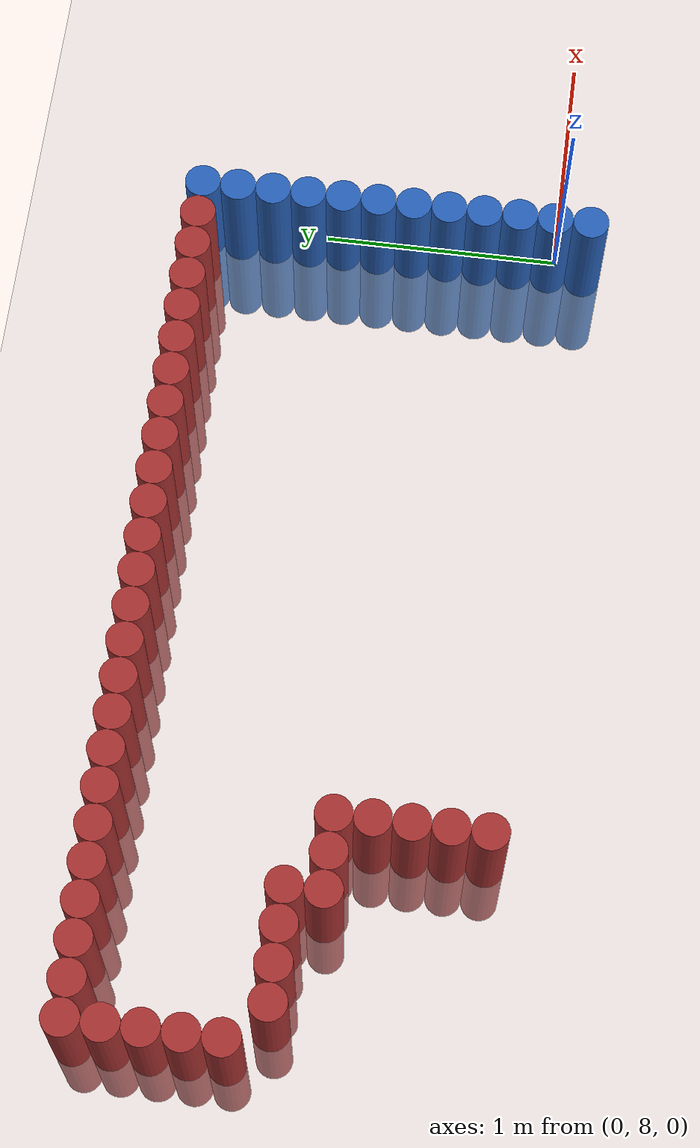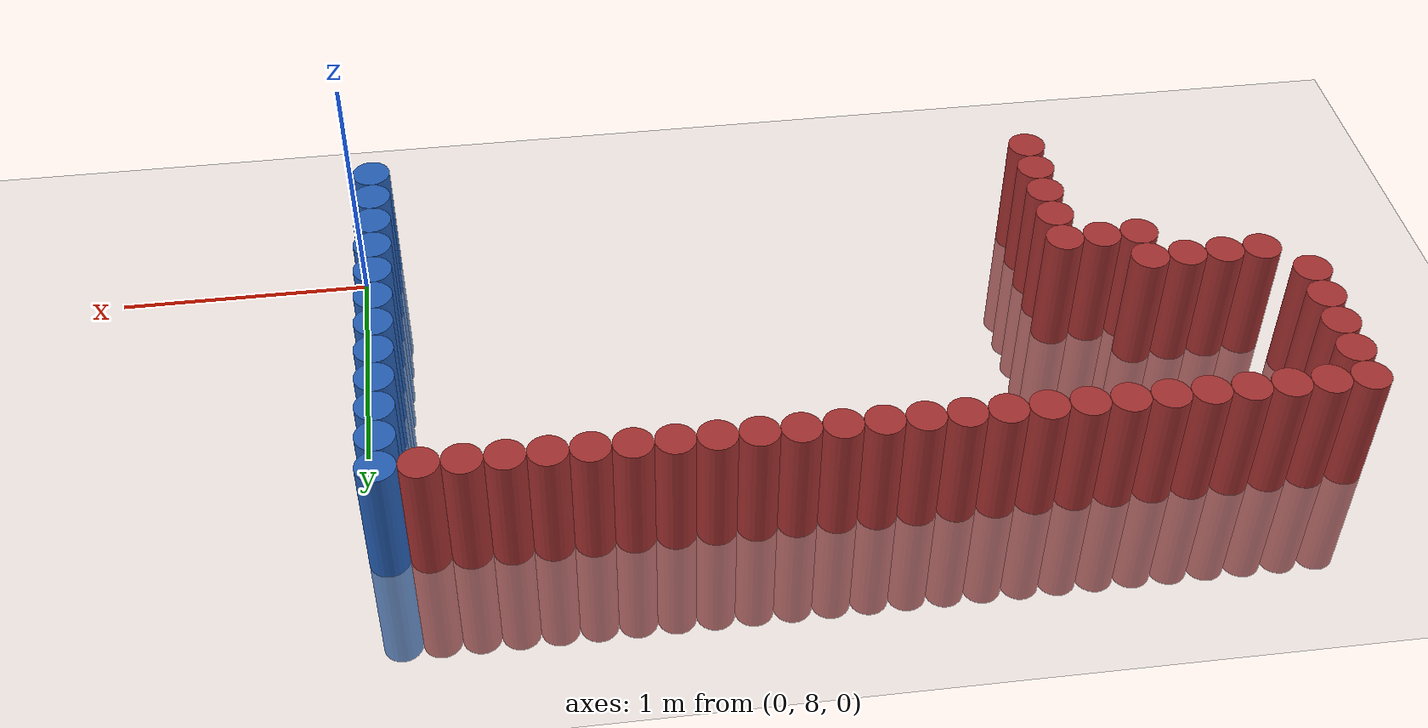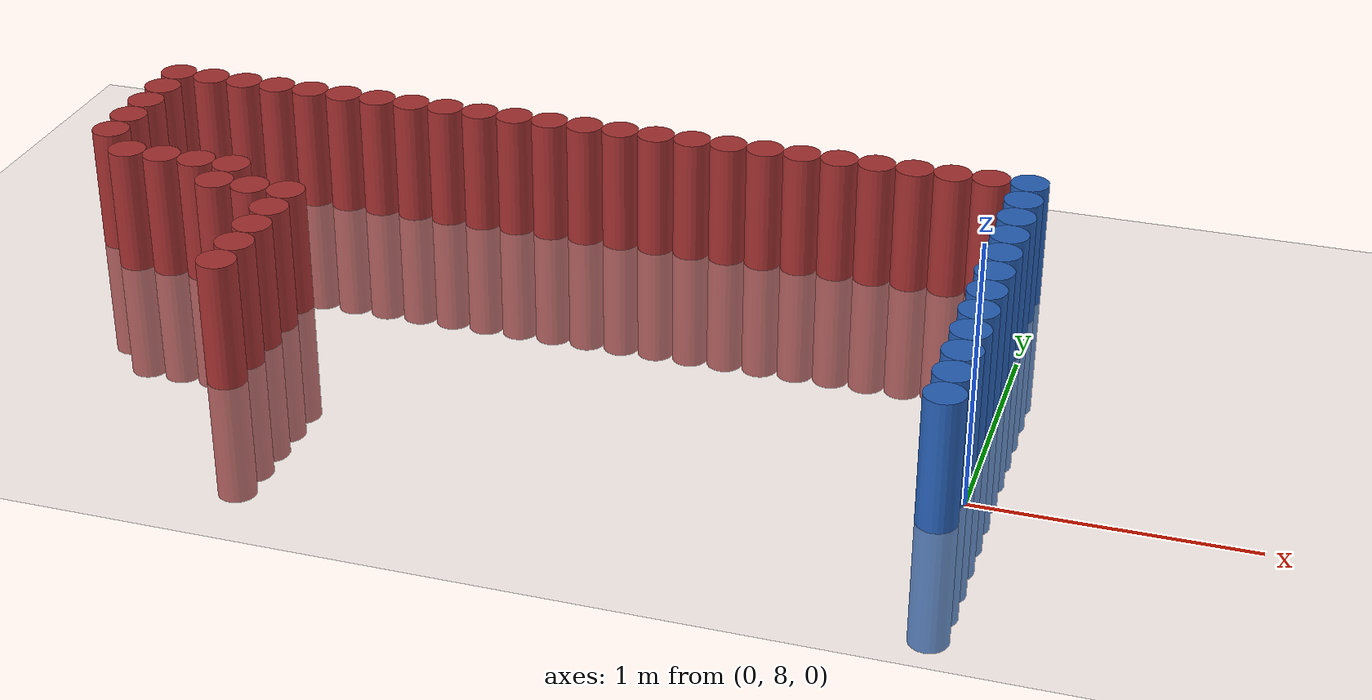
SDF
<sdf version="1.6">
 <world name="default">
  <model name="ground_plane">
   <static>1</static>
   <link name="link">
    <collision name="collision">
     <geometry><plane><normal>0 0 1</normal><size>100 100</size></plane></geometry>
     <surface><friction><ode><mu>100</mu><mu2>50</mu2></ode></friction></surface>
    </collision>
    <visual name="visual">
     <cast_shadows>0</cast_shadows>
     <geometry><plane><normal>0 0 1</normal><size>100 100</size></plane></geometry>
     <material>
      <script><uri>file://media/materials/scripts/gazebo.material</uri><name>Gazebo/Grey</name></script>
     </material>
    </visual>
   </link>
  </model>
  <model name="unit_cylinder_249">
   <static>1</static>
   <pose>-3.675000 8.925000 0.000000 0.000000 0.000000 0.000000</pose>
   <link name="link">
    <inertial>
     <mass>1</mass>
     <inertia><ixx>0.145833</ixx><ixy>0</ixy><ixz>0</ixz><iyy>0.145833</iyy><iyz>0</iyz><izz>0.125</izz></inertia>
    </inertial>
    <collision name="collision">
     <geometry><cylinder><radius>0.075000</radius><length>1</length></cylinder></geometry>
    </collision>
    <visual name="visual">
     <geometry><cylinder><radius>0.075000</radius><length>1</length></cylinder></geometry>
     <material>
      <ambient>0.648000 0.192000 0.192000 1</ambient>
      <diffuse>0.648000 0.192000 0.192000 1</diffuse>
     </material>
     <material>
      <script><name>Gazebo/Grey</name><uri>file://media/materials/scripts/gazebo.material</uri></script>
     </material>
    </visual>
   </link>
  </model>
  <model name="unit_cylinder_250">
   <static>1</static>
   <pose>-3.675000 9.075000 0.000000 0.000000 0.000000 0.000000</pose>
   <link name="link">
    <inertial>
     <mass>1</mass>
     <inertia><ixx>0.145833</ixx><ixy>0</ixy><ixz>0</ixz><iyy>0.145833</iyy><iyz>0</iyz><izz>0.125</izz></inertia>
    </inertial>
    <collision name="collision">
     <geometry><cylinder><radius>0.075000</radius><length>1</length></cylinder></geometry>
    </collision>
    <visual name="visual">
     <geometry><cylinder><radius>0.075000</radius><length>1</length></cylinder></geometry>
     <material>
      <ambient>0.648000 0.192000 0.192000 1</ambient>
      <diffuse>0.648000 0.192000 0.192000 1</diffuse>
     </material>
     <material>
      <script><name>Gazebo/Grey</name><uri>file://media/materials/scripts/gazebo.material</uri></script>
     </material>
    </visual>
   </link>
  </model>
  <model name="unit_cylinder_251">
   <static>1</static>
   <pose>-3.675000 9.225000 0.000000 0.000000 0.000000 0.000000</pose>
   <link name="link">
    <inertial>
     <mass>1</mass>
     <inertia><ixx>0.145833</ixx><ixy>0</ixy><ixz>0</ixz><iyy>0.145833</iyy><iyz>0</iyz><izz>0.125</izz></inertia>
    </inertial>
    <collision name="collision">
     <geometry><cylinder><radius>0.075000</radius><length>1</length></cylinder></geometry>
    </collision>
    <visual name="visual">
     <geometry><cylinder><radius>0.075000</radius><length>1</length></cylinder></geometry>
     <material>
      <ambient>0.648000 0.192000 0.192000 1</ambient>
      <diffuse>0.648000 0.192000 0.192000 1</diffuse>
     </material>
     <material>
      <script><name>Gazebo/Grey</name><uri>file://media/materials/scripts/gazebo.material</uri></script>
     </material>
    </visual>
   </link>
  </model>
  <model name="unit_cylinder_252">
   <static>1</static>
   <pose>-3.675000 9.375000 0.000000 0.000000 0.000000 0.000000</pose>
   <link name="link">
    <inertial>
     <mass>1</mass>
     <inertia><ixx>0.145833</ixx><ixy>0</ixy><ixz>0</ixz><iyy>0.145833</iyy><iyz>0</iyz><izz>0.125</izz></inertia>
    </inertial>
    <collision name="collision">
     <geometry><cylinder><radius>0.075000</radius><length>1</length></cylinder></geometry>
    </collision>
    <visual name="visual">
     <geometry><cylinder><radius>0.075000</radius><length>1</length></cylinder></geometry>
     <material>
      <ambient>0.648000 0.192000 0.192000 1</ambient>
      <diffuse>0.648000 0.192000 0.192000 1</diffuse>
     </material>
     <material>
      <script><name>Gazebo/Grey</name><uri>file://media/materials/scripts/gazebo.material</uri></script>
     </material>
    </visual>
   </link>
  </model>
  <model name="unit_cylinder_253">
   <static>1</static>
   <pose>-3.675000 9.525000 0.000000 0.000000 0.000000 0.000000</pose>
   <link name="link">
    <inertial>
     <mass>1</mass>
     <inertia><ixx>0.145833</ixx><ixy>0</ixy><ixz>0</ixz><iyy>0.145833</iyy><iyz>0</iyz><izz>0.125</izz></inertia>
    </inertial>
    <collision name="collision">
     <geometry><cylinder><radius>0.075000</radius><length>1</length></cylinder></geometry>
    </collision>
    <visual name="visual">
     <geometry><cylinder><radius>0.075000</radius><length>1</length></cylinder></geometry>
     <material>
      <ambient>0.648000 0.192000 0.192000 1</ambient>
      <diffuse>0.648000 0.192000 0.192000 1</diffuse>
     </material>
     <material>
      <script><name>Gazebo/Grey</name><uri>file://media/materials/scripts/gazebo.material</uri></script>
     </material>
    </visual>
   </link>
  </model>
  <model name="unit_cylinder_254">
   <static>1</static>
   <pose>-3.525000 8.775000 0.000000 0.000000 0.000000 0.000000</pose>
   <link name="link">
    <inertial>
     <mass>1</mass>
     <inertia><ixx>0.145833</ixx><ixy>0</ixy><ixz>0</ixz><iyy>0.145833</iyy><iyz>0</iyz><izz>0.125</izz></inertia>
    </inertial>
    <collision name="collision">
     <geometry><cylinder><radius>0.075000</radius><length>1</length></cylinder></geometry>
    </collision>
    <visual name="visual">
     <geometry><cylinder><radius>0.075000</radius><length>1</length></cylinder></geometry>
     <material>
      <ambient>0.648000 0.192000 0.192000 1</ambient>
      <diffuse>0.648000 0.192000 0.192000 1</diffuse>
     </material>
     <material>
      <script><name>Gazebo/Grey</name><uri>file://media/materials/scripts/gazebo.material</uri></script>
     </material>
    </visual>
   </link>
  </model>
  <model name="unit_cylinder_255">
   <static>1</static>
   <pose>-3.525000 9.525000 0.000000 0.000000 0.000000 0.000000</pose>
   <link name="link">
    <inertial>
     <mass>1</mass>
     <inertia><ixx>0.145833</ixx><ixy>0</ixy><ixz>0</ixz><iyy>0.145833</iyy><iyz>0</iyz><izz>0.125</izz></inertia>
    </inertial>
    <collision name="collision">
     <geometry><cylinder><radius>0.075000</radius><length>1</length></cylinder></geometry>
    </collision>
    <visual name="visual">
     <geometry><cylinder><radius>0.075000</radius><length>1</length></cylinder></geometry>
     <material>
      <ambient>0.648000 0.192000 0.192000 1</ambient>
      <diffuse>0.648000 0.192000 0.192000 1</diffuse>
     </material>
     <material>
      <script><name>Gazebo/Grey</name><uri>file://media/materials/scripts/gazebo.material</uri></script>
     </material>
    </visual>
   </link>
  </model>
  <model name="unit_cylinder_256">
   <static>1</static>
   <pose>-3.375000 8.775000 0.000000 0.000000 0.000000 0.000000</pose>
   <link name="link">
    <inertial>
     <mass>1</mass>
     <inertia><ixx>0.145833</ixx><ixy>0</ixy><ixz>0</ixz><iyy>0.145833</iyy><iyz>0</iyz><izz>0.125</izz></inertia>
    </inertial>
    <collision name="collision">
     <geometry><cylinder><radius>0.075000</radius><length>1</length></cylinder></geometry>
    </collision>
    <visual name="visual">
     <geometry><cylinder><radius>0.075000</radius><length>1</length></cylinder></geometry>
     <material>
      <ambient>0.648000 0.192000 0.192000 1</ambient>
      <diffuse>0.648000 0.192000 0.192000 1</diffuse>
     </material>
     <material>
      <script><name>Gazebo/Grey</name><uri>file://media/materials/scripts/gazebo.material</uri></script>
     </material>
    </visual>
   </link>
  </model>
  <model name="unit_cylinder_257">
   <static>1</static>
   <pose>-3.375000 9.525000 0.000000 0.000000 0.000000 0.000000</pose>
   <link name="link">
    <inertial>
     <mass>1</mass>
     <inertia><ixx>0.145833</ixx><ixy>0</ixy><ixz>0</ixz><iyy>0.145833</iyy><iyz>0</iyz><izz>0.125</izz></inertia>
    </inertial>
    <collision name="collision">
     <geometry><cylinder><radius>0.075000</radius><length>1</length></cylinder></geometry>
    </collision>
    <visual name="visual">
     <geometry><cylinder><radius>0.075000</radius><length>1</length></cylinder></geometry>
     <material>
      <ambient>0.648000 0.192000 0.192000 1</ambient>
      <diffuse>0.648000 0.192000 0.192000 1</diffuse>
     </material>
     <material>
      <script><name>Gazebo/Grey</name><uri>file://media/materials/scripts/gazebo.material</uri></script>
     </material>
    </visual>
   </link>
  </model>
  <model name="unit_cylinder_258">
   <static>1</static>
   <pose>-3.225000 8.775000 0.000000 0.000000 0.000000 0.000000</pose>
   <link name="link">
    <inertial>
     <mass>1</mass>
     <inertia><ixx>0.145833</ixx><ixy>0</ixy><ixz>0</ixz><iyy>0.145833</iyy><iyz>0</iyz><izz>0.125</izz></inertia>
    </inertial>
    <collision name="collision">
     <geometry><cylinder><radius>0.075000</radius><length>1</length></cylinder></geometry>
    </collision>
    <visual name="visual">
     <geometry><cylinder><radius>0.075000</radius><length>1</length></cylinder></geometry>
     <material>
      <ambient>0.648000 0.192000 0.192000 1</ambient>
      <diffuse>0.648000 0.192000 0.192000 1</diffuse>
     </material>
     <material>
      <script><name>Gazebo/Grey</name><uri>file://media/materials/scripts/gazebo.material</uri></script>
     </material>
    </visual>
   </link>
  </model>
  <model name="unit_cylinder_259">
   <static>1</static>
   <pose>-3.225000 9.525000 0.000000 0.000000 0.000000 0.000000</pose>
   <link name="link">
    <inertial>
     <mass>1</mass>
     <inertia><ixx>0.145833</ixx><ixy>0</ixy><ixz>0</ixz><iyy>0.145833</iyy><iyz>0</iyz><izz>0.125</izz></inertia>
    </inertial>
    <collision name="collision">
     <geometry><cylinder><radius>0.075000</radius><length>1</length></cylinder></geometry>
    </collision>
    <visual name="visual">
     <geometry><cylinder><radius>0.075000</radius><length>1</length></cylinder></geometry>
     <material>
      <ambient>0.648000 0.192000 0.192000 1</ambient>
      <diffuse>0.648000 0.192000 0.192000 1</diffuse>
     </material>
     <material>
      <script><name>Gazebo/Grey</name><uri>file://media/materials/scripts/gazebo.material</uri></script>
     </material>
    </visual>
   </link>
  </model>
  <model name="unit_cylinder_260">
   <static>1</static>
   <pose>-3.075000 8.625000 0.000000 0.000000 0.000000 0.000000</pose>
   <link name="link">
    <inertial>
     <mass>1</mass>
     <inertia><ixx>0.145833</ixx><ixy>0</ixy><ixz>0</ixz><iyy>0.145833</iyy><iyz>0</iyz><izz>0.125</izz></inertia>
    </inertial>
    <collision name="collision">
     <geometry><cylinder><radius>0.075000</radius><length>1</length></cylinder></geometry>
    </collision>
    <visual name="visual">
     <geometry><cylinder><radius>0.075000</radius><length>1</length></cylinder></geometry>
     <material>
      <ambient>0.648000 0.192000 0.192000 1</ambient>
      <diffuse>0.648000 0.192000 0.192000 1</diffuse>
     </material>
     <material>
      <script><name>Gazebo/Grey</name><uri>file://media/materials/scripts/gazebo.material</uri></script>
     </material>
    </visual>
   </link>
  </model>
  <model name="unit_cylinder_261">
   <static>1</static>
   <pose>-3.075000 8.775000 0.000000 0.000000 0.000000 0.000000</pose>
   <link name="link">
    <inertial>
     <mass>1</mass>
     <inertia><ixx>0.145833</ixx><ixy>0</ixy><ixz>0</ixz><iyy>0.145833</iyy><iyz>0</iyz><izz>0.125</izz></inertia>
    </inertial>
    <collision name="collision">
     <geometry><cylinder><radius>0.075000</radius><length>1</length></cylinder></geometry>
    </collision>
    <visual name="visual">
     <geometry><cylinder><radius>0.075000</radius><length>1</length></cylinder></geometry>
     <material>
      <ambient>0.648000 0.192000 0.192000 1</ambient>
      <diffuse>0.648000 0.192000 0.192000 1</diffuse>
     </material>
     <material>
      <script><name>Gazebo/Grey</name><uri>file://media/materials/scripts/gazebo.material</uri></script>
     </material>
    </visual>
   </link>
  </model>
  <model name="unit_cylinder_262">
   <static>1</static>
   <pose>-3.075000 9.525000 0.000000 0.000000 0.000000 0.000000</pose>
   <link name="link">
    <inertial>
     <mass>1</mass>
     <inertia><ixx>0.145833</ixx><ixy>0</ixy><ixz>0</ixz><iyy>0.145833</iyy><iyz>0</iyz><izz>0.125</izz></inertia>
    </inertial>
    <collision name="collision">
     <geometry><cylinder><radius>0.075000</radius><length>1</length></cylinder></geometry>
    </collision>
    <visual name="visual">
     <geometry><cylinder><radius>0.075000</radius><length>1</length></cylinder></geometry>
     <material>
      <ambient>0.648000 0.192000 0.192000 1</ambient>
      <diffuse>0.648000 0.192000 0.192000 1</diffuse>
     </material>
     <material>
      <script><name>Gazebo/Grey</name><uri>file://media/materials/scripts/gazebo.material</uri></script>
     </material>
    </visual>
   </link>
  </model>
  <model name="unit_cylinder_263">
   <static>1</static>
   <pose>-2.925000 8.625000 0.000000 0.000000 0.000000 0.000000</pose>
   <link name="link">
    <inertial>
     <mass>1</mass>
     <inertia><ixx>0.145833</ixx><ixy>0</ixy><ixz>0</ixz><iyy>0.145833</iyy><iyz>0</iyz><izz>0.125</izz></inertia>
    </inertial>
    <collision name="collision">
     <geometry><cylinder><radius>0.075000</radius><length>1</length></cylinder></geometry>
    </collision>
    <visual name="visual">
     <geometry><cylinder><radius>0.075000</radius><length>1</length></cylinder></geometry>
     <material>
      <ambient>0.648000 0.192000 0.192000 1</ambient>
      <diffuse>0.648000 0.192000 0.192000 1</diffuse>
     </material>
     <material>
      <script><name>Gazebo/Grey</name><uri>file://media/materials/scripts/gazebo.material</uri></script>
     </material>
    </visual>
   </link>
  </model>
  <model name="unit_cylinder_264">
   <static>1</static>
   <pose>-2.925000 9.525000 0.000000 0.000000 0.000000 0.000000</pose>
   <link name="link">
    <inertial>
     <mass>1</mass>
     <inertia><ixx>0.145833</ixx><ixy>0</ixy><ixz>0</ixz><iyy>0.145833</iyy><iyz>0</iyz><izz>0.125</izz></inertia>
    </inertial>
    <collision name="collision">
     <geometry><cylinder><radius>0.075000</radius><length>1</length></cylinder></geometry>
    </collision>
    <visual name="visual">
     <geometry><cylinder><radius>0.075000</radius><length>1</length></cylinder></geometry>
     <material>
      <ambient>0.648000 0.192000 0.192000 1</ambient>
      <diffuse>0.648000 0.192000 0.192000 1</diffuse>
     </material>
     <material>
      <script><name>Gazebo/Grey</name><uri>file://media/materials/scripts/gazebo.material</uri></script>
     </material>
    </visual>
   </link>
  </model>
  <model name="unit_cylinder_266">
   <static>1</static>
   <pose>-2.775000 8.025000 0.000000 0.000000 0.000000 0.000000</pose>
   <link name="link">
    <inertial>
     <mass>1</mass>
     <inertia><ixx>0.145833</ixx><ixy>0</ixy><ixz>0</ixz><iyy>0.145833</iyy><iyz>0</iyz><izz>0.125</izz></inertia>
    </inertial>
    <collision name="collision">
     <geometry><cylinder><radius>0.075000</radius><length>1</length></cylinder></geometry>
    </collision>
    <visual name="visual">
     <geometry><cylinder><radius>0.075000</radius><length>1</length></cylinder></geometry>
     <material>
      <ambient>0.648000 0.192000 0.192000 1</ambient>
      <diffuse>0.648000 0.192000 0.192000 1</diffuse>
     </material>
     <material>
      <script><name>Gazebo/Grey</name><uri>file://media/materials/scripts/gazebo.material</uri></script>
     </material>
    </visual>
   </link>
  </model>
  <model name="unit_cylinder_267">
   <static>1</static>
   <pose>-2.775000 8.175000 0.000000 0.000000 0.000000 0.000000</pose>
   <link name="link">
    <inertial>
     <mass>1</mass>
     <inertia><ixx>0.145833</ixx><ixy>0</ixy><ixz>0</ixz><iyy>0.145833</iyy><iyz>0</iyz><izz>0.125</izz></inertia>
    </inertial>
    <collision name="collision">
     <geometry><cylinder><radius>0.075000</radius><length>1</length></cylinder></geometry>
    </collision>
    <visual name="visual">
     <geometry><cylinder><radius>0.075000</radius><length>1</length></cylinder></geometry>
     <material>
      <ambient>0.648000 0.192000 0.192000 1</ambient>
      <diffuse>0.648000 0.192000 0.192000 1</diffuse>
     </material>
     <material>
      <script><name>Gazebo/Grey</name><uri>file://media/materials/scripts/gazebo.material</uri></script>
     </material>
    </visual>
   </link>
  </model>
  <model name="unit_cylinder_268">
   <static>1</static>
   <pose>-2.775000 8.325000 0.000000 0.000000 0.000000 0.000000</pose>
   <link name="link">
    <inertial>
     <mass>1</mass>
     <inertia><ixx>0.145833</ixx><ixy>0</ixy><ixz>0</ixz><iyy>0.145833</iyy><iyz>0</iyz><izz>0.125</izz></inertia>
    </inertial>
    <collision name="collision">
     <geometry><cylinder><radius>0.075000</radius><length>1</length></cylinder></geometry>
    </collision>
    <visual name="visual">
     <geometry><cylinder><radius>0.075000</radius><length>1</length></cylinder></geometry>
     <material>
      <ambient>0.648000 0.192000 0.192000 1</ambient>
      <diffuse>0.648000 0.192000 0.192000 1</diffuse>
     </material>
     <material>
      <script><name>Gazebo/Grey</name><uri>file://media/materials/scripts/gazebo.material</uri></script>
     </material>
    </visual>
   </link>
  </model>
  <model name="unit_cylinder_269">
   <static>1</static>
   <pose>-2.775000 8.475000 0.000000 0.000000 0.000000 0.000000</pose>
   <link name="link">
    <inertial>
     <mass>1</mass>
     <inertia><ixx>0.145833</ixx><ixy>0</ixy><ixz>0</ixz><iyy>0.145833</iyy><iyz>0</iyz><izz>0.125</izz></inertia>
    </inertial>
    <collision name="collision">
     <geometry><cylinder><radius>0.075000</radius><length>1</length></cylinder></geometry>
    </collision>
    <visual name="visual">
     <geometry><cylinder><radius>0.075000</radius><length>1</length></cylinder></geometry>
     <material>
      <ambient>0.648000 0.192000 0.192000 1</ambient>
      <diffuse>0.648000 0.192000 0.192000 1</diffuse>
     </material>
     <material>
      <script><name>Gazebo/Grey</name><uri>file://media/materials/scripts/gazebo.material</uri></script>
     </material>
    </visual>
   </link>
  </model>
  <model name="unit_cylinder_270">
   <static>1</static>
   <pose>-2.775000 8.625000 0.000000 0.000000 0.000000 0.000000</pose>
   <link name="link">
    <inertial>
     <mass>1</mass>
     <inertia><ixx>0.145833</ixx><ixy>0</ixy><ixz>0</ixz><iyy>0.145833</iyy><iyz>0</iyz><izz>0.125</izz></inertia>
    </inertial>
    <collision name="collision">
     <geometry><cylinder><radius>0.075000</radius><length>1</length></cylinder></geometry>
    </collision>
    <visual name="visual">
     <geometry><cylinder><radius>0.075000</radius><length>1</length></cylinder></geometry>
     <material>
      <ambient>0.648000 0.192000 0.192000 1</ambient>
      <diffuse>0.648000 0.192000 0.192000 1</diffuse>
     </material>
     <material>
      <script><name>Gazebo/Grey</name><uri>file://media/materials/scripts/gazebo.material</uri></script>
     </material>
    </visual>
   </link>
  </model>
  <model name="unit_cylinder_271">
   <static>1</static>
   <pose>-2.775000 9.525000 0.000000 0.000000 0.000000 0.000000</pose>
   <link name="link">
    <inertial>
     <mass>1</mass>
     <inertia><ixx>0.145833</ixx><ixy>0</ixy><ixz>0</ixz><iyy>0.145833</iyy><iyz>0</iyz><izz>0.125</izz></inertia>
    </inertial>
    <collision name="collision">
     <geometry><cylinder><radius>0.075000</radius><length>1</length></cylinder></geometry>
    </collision>
    <visual name="visual">
     <geometry><cylinder><radius>0.075000</radius><length>1</length></cylinder></geometry>
     <material>
      <ambient>0.648000 0.192000 0.192000 1</ambient>
      <diffuse>0.648000 0.192000 0.192000 1</diffuse>
     </material>
     <material>
      <script><name>Gazebo/Grey</name><uri>file://media/materials/scripts/gazebo.material</uri></script>
     </material>
    </visual>
   </link>
  </model>
  <model name="unit_cylinder_273">
   <static>1</static>
   <pose>-2.625000 9.525000 0.000000 0.000000 0.000000 0.000000</pose>
   <link name="link">
    <inertial>
     <mass>1</mass>
     <inertia><ixx>0.145833</ixx><ixy>0</ixy><ixz>0</ixz><iyy>0.145833</iyy><iyz>0</iyz><izz>0.125</izz></inertia>
    </inertial>
    <collision name="collision">
     <geometry><cylinder><radius>0.075000</radius><length>1</length></cylinder></geometry>
    </collision>
    <visual name="visual">
     <geometry><cylinder><radius>0.075000</radius><length>1</length></cylinder></geometry>
     <material>
      <ambient>0.648000 0.192000 0.192000 1</ambient>
      <diffuse>0.648000 0.192000 0.192000 1</diffuse>
     </material>
     <material>
      <script><name>Gazebo/Grey</name><uri>file://media/materials/scripts/gazebo.material</uri></script>
     </material>
    </visual>
   </link>
  </model>
  <model name="unit_cylinder_275">
   <static>1</static>
   <pose>-2.475000 9.525000 0.000000 0.000000 0.000000 0.000000</pose>
   <link name="link">
    <inertial>
     <mass>1</mass>
     <inertia><ixx>0.145833</ixx><ixy>0</ixy><ixz>0</ixz><iyy>0.145833</iyy><iyz>0</iyz><izz>0.125</izz></inertia>
    </inertial>
    <collision name="collision">
     <geometry><cylinder><radius>0.075000</radius><length>1</length></cylinder></geometry>
    </collision>
    <visual name="visual">
     <geometry><cylinder><radius>0.075000</radius><length>1</length></cylinder></geometry>
     <material>
      <ambient>0.648000 0.192000 0.192000 1</ambient>
      <diffuse>0.648000 0.192000 0.192000 1</diffuse>
     </material>
     <material>
      <script><name>Gazebo/Grey</name><uri>file://media/materials/scripts/gazebo.material</uri></script>
     </material>
    </visual>
   </link>
  </model>
  <model name="unit_cylinder_295">
   <static>1</static>
   <pose>-2.325000 9.525000 0.000000 0.000000 0.000000 0.000000</pose>
   <link name="link">
    <inertial>
     <mass>1</mass>
     <inertia><ixx>0.145833</ixx><ixy>0</ixy><ixz>0</ixz><iyy>0.145833</iyy><iyz>0</iyz><izz>0.125</izz></inertia>
    </inertial>
    <collision name="collision">
     <geometry><cylinder><radius>0.075000</radius><length>1</length></cylinder></geometry>
    </collision>
    <visual name="visual">
     <geometry><cylinder><radius>0.075000</radius><length>1</length></cylinder></geometry>
     <material>
      <ambient>0.648000 0.192000 0.192000 1</ambient>
      <diffuse>0.648000 0.192000 0.192000 1</diffuse>
     </material>
     <material>
      <script><name>Gazebo/Grey</name><uri>file://media/materials/scripts/gazebo.material</uri></script>
     </material>
    </visual>
   </link>
  </model>
  <model name="unit_cylinder_297">
   <static>1</static>
   <pose>-2.175000 9.525000 0.000000 0.000000 0.000000 0.000000</pose>
   <link name="link">
    <inertial>
     <mass>1</mass>
     <inertia><ixx>0.145833</ixx><ixy>0</ixy><ixz>0</ixz><iyy>0.145833</iyy><iyz>0</iyz><izz>0.125</izz></inertia>
    </inertial>
    <collision name="collision">
     <geometry><cylinder><radius>0.075000</radius><length>1</length></cylinder></geometry>
    </collision>
    <visual name="visual">
     <geometry><cylinder><radius>0.075000</radius><length>1</length></cylinder></geometry>
     <material>
      <ambient>0.648000 0.192000 0.192000 1</ambient>
      <diffuse>0.648000 0.192000 0.192000 1</diffuse>
     </material>
     <material>
      <script><name>Gazebo/Grey</name><uri>file://media/materials/scripts/gazebo.material</uri></script>
     </material>
    </visual>
   </link>
  </model>
  <model name="unit_cylinder_299">
   <static>1</static>
   <pose>-2.025000 9.525000 0.000000 0.000000 0.000000 0.000000</pose>
   <link name="link">
    <inertial>
     <mass>1</mass>
     <inertia><ixx>0.145833</ixx><ixy>0</ixy><ixz>0</ixz><iyy>0.145833</iyy><iyz>0</iyz><izz>0.125</izz></inertia>
    </inertial>
    <collision name="collision">
     <geometry><cylinder><radius>0.075000</radius><length>1</length></cylinder></geometry>
    </collision>
    <visual name="visual">
     <geometry><cylinder><radius>0.075000</radius><length>1</length></cylinder></geometry>
     <material>
      <ambient>0.648000 0.192000 0.192000 1</ambient>
      <diffuse>0.648000 0.192000 0.192000 1</diffuse>
     </material>
     <material>
      <script><name>Gazebo/Grey</name><uri>file://media/materials/scripts/gazebo.material</uri></script>
     </material>
    </visual>
   </link>
  </model>
  <model name="unit_cylinder_301">
   <static>1</static>
   <pose>-1.875000 9.525000 0.000000 0.000000 0.000000 0.000000</pose>
   <link name="link">
    <inertial>
     <mass>1</mass>
     <inertia><ixx>0.145833</ixx><ixy>0</ixy><ixz>0</ixz><iyy>0.145833</iyy><iyz>0</iyz><izz>0.125</izz></inertia>
    </inertial>
    <collision name="collision">
     <geometry><cylinder><radius>0.075000</radius><length>1</length></cylinder></geometry>
    </collision>
    <visual name="visual">
     <geometry><cylinder><radius>0.075000</radius><length>1</length></cylinder></geometry>
     <material>
      <ambient>0.648000 0.192000 0.192000 1</ambient>
      <diffuse>0.648000 0.192000 0.192000 1</diffuse>
     </material>
     <material>
      <script><name>Gazebo/Grey</name><uri>file://media/materials/scripts/gazebo.material</uri></script>
     </material>
    </visual>
   </link>
  </model>
  <model name="unit_cylinder_303">
   <static>1</static>
   <pose>-1.725000 9.525000 0.000000 0.000000 0.000000 0.000000</pose>
   <link name="link">
    <inertial>
     <mass>1</mass>
     <inertia><ixx>0.145833</ixx><ixy>0</ixy><ixz>0</ixz><iyy>0.145833</iyy><iyz>0</iyz><izz>0.125</izz></inertia>
    </inertial>
    <collision name="collision">
     <geometry><cylinder><radius>0.075000</radius><length>1</length></cylinder></geometry>
    </collision>
    <visual name="visual">
     <geometry><cylinder><radius>0.075000</radius><length>1</length></cylinder></geometry>
     <material>
      <ambient>0.648000 0.192000 0.192000 1</ambient>
      <diffuse>0.648000 0.192000 0.192000 1</diffuse>
     </material>
     <material>
      <script><name>Gazebo/Grey</name><uri>file://media/materials/scripts/gazebo.material</uri></script>
     </material>
    </visual>
   </link>
  </model>
  <model name="unit_cylinder_305">
   <static>1</static>
   <pose>-1.575000 9.525000 0.000000 0.000000 0.000000 0.000000</pose>
   <link name="link">
    <inertial>
     <mass>1</mass>
     <inertia><ixx>0.145833</ixx><ixy>0</ixy><ixz>0</ixz><iyy>0.145833</iyy><iyz>0</iyz><izz>0.125</izz></inertia>
    </inertial>
    <collision name="collision">
     <geometry><cylinder><radius>0.075000</radius><length>1</length></cylinder></geometry>
    </collision>
    <visual name="visual">
     <geometry><cylinder><radius>0.075000</radius><length>1</length></cylinder></geometry>
     <material>
      <ambient>0.648000 0.192000 0.192000 1</ambient>
      <diffuse>0.648000 0.192000 0.192000 1</diffuse>
     </material>
     <material>
      <script><name>Gazebo/Grey</name><uri>file://media/materials/scripts/gazebo.material</uri></script>
     </material>
    </visual>
   </link>
  </model>
  <model name="unit_cylinder_307">
   <static>1</static>
   <pose>-1.425000 9.525000 0.000000 0.000000 0.000000 0.000000</pose>
   <link name="link">
    <inertial>
     <mass>1</mass>
     <inertia><ixx>0.145833</ixx><ixy>0</ixy><ixz>0</ixz><iyy>0.145833</iyy><iyz>0</iyz><izz>0.125</izz></inertia>
    </inertial>
    <collision name="collision">
     <geometry><cylinder><radius>0.075000</radius><length>1</length></cylinder></geometry>
    </collision>
    <visual name="visual">
     <geometry><cylinder><radius>0.075000</radius><length>1</length></cylinder></geometry>
     <material>
      <ambient>0.648000 0.192000 0.192000 1</ambient>
      <diffuse>0.648000 0.192000 0.192000 1</diffuse>
     </material>
     <material>
      <script><name>Gazebo/Grey</name><uri>file://media/materials/scripts/gazebo.material</uri></script>
     </material>
    </visual>
   </link>
  </model>
  <model name="unit_cylinder_309">
   <static>1</static>
   <pose>-1.275000 9.525000 0.000000 0.000000 0.000000 0.000000</pose>
   <link name="link">
    <inertial>
     <mass>1</mass>
     <inertia><ixx>0.145833</ixx><ixy>0</ixy><ixz>0</ixz><iyy>0.145833</iyy><iyz>0</iyz><izz>0.125</izz></inertia>
    </inertial>
    <collision name="collision">
     <geometry><cylinder><radius>0.075000</radius><length>1</length></cylinder></geometry>
    </collision>
    <visual name="visual">
     <geometry><cylinder><radius>0.075000</radius><length>1</length></cylinder></geometry>
     <material>
      <ambient>0.648000 0.192000 0.192000 1</ambient>
      <diffuse>0.648000 0.192000 0.192000 1</diffuse>
     </material>
     <material>
      <script><name>Gazebo/Grey</name><uri>file://media/materials/scripts/gazebo.material</uri></script>
     </material>
    </visual>
   </link>
  </model>
  <model name="unit_cylinder_311">
   <static>1</static>
   <pose>-1.125000 9.525000 0.000000 0.000000 0.000000 0.000000</pose>
   <link name="link">
    <inertial>
     <mass>1</mass>
     <inertia><ixx>0.145833</ixx><ixy>0</ixy><ixz>0</ixz><iyy>0.145833</iyy><iyz>0</iyz><izz>0.125</izz></inertia>
    </inertial>
    <collision name="collision">
     <geometry><cylinder><radius>0.075000</radius><length>1</length></cylinder></geometry>
    </collision>
    <visual name="visual">
     <geometry><cylinder><radius>0.075000</radius><length>1</length></cylinder></geometry>
     <material>
      <ambient>0.648000 0.192000 0.192000 1</ambient>
      <diffuse>0.648000 0.192000 0.192000 1</diffuse>
     </material>
     <material>
      <script><name>Gazebo/Grey</name><uri>file://media/materials/scripts/gazebo.material</uri></script>
     </material>
    </visual>
   </link>
  </model>
  <model name="unit_cylinder_313">
   <static>1</static>
   <pose>-0.975000 9.525000 0.000000 0.000000 0.000000 0.000000</pose>
   <link name="link">
    <inertial>
     <mass>1</mass>
     <inertia><ixx>0.145833</ixx><ixy>0</ixy><ixz>0</ixz><iyy>0.145833</iyy><iyz>0</iyz><izz>0.125</izz></inertia>
    </inertial>
    <collision name="collision">
     <geometry><cylinder><radius>0.075000</radius><length>1</length></cylinder></geometry>
    </collision>
    <visual name="visual">
     <geometry><cylinder><radius>0.075000</radius><length>1</length></cylinder></geometry>
     <material>
      <ambient>0.648000 0.192000 0.192000 1</ambient>
      <diffuse>0.648000 0.192000 0.192000 1</diffuse>
     </material>
     <material>
      <script><name>Gazebo/Grey</name><uri>file://media/materials/scripts/gazebo.material</uri></script>
     </material>
    </visual>
   </link>
  </model>
  <model name="unit_cylinder_315">
   <static>1</static>
   <pose>-0.825000 9.525000 0.000000 0.000000 0.000000 0.000000</pose>
   <link name="link">
    <inertial>
     <mass>1</mass>
     <inertia><ixx>0.145833</ixx><ixy>0</ixy><ixz>0</ixz><iyy>0.145833</iyy><iyz>0</iyz><izz>0.125</izz></inertia>
    </inertial>
    <collision name="collision">
     <geometry><cylinder><radius>0.075000</radius><length>1</length></cylinder></geometry>
    </collision>
    <visual name="visual">
     <geometry><cylinder><radius>0.075000</radius><length>1</length></cylinder></geometry>
     <material>
      <ambient>0.648000 0.192000 0.192000 1</ambient>
      <diffuse>0.648000 0.192000 0.192000 1</diffuse>
     </material>
     <material>
      <script><name>Gazebo/Grey</name><uri>file://media/materials/scripts/gazebo.material</uri></script>
     </material>
    </visual>
   </link>
  </model>
  <model name="unit_cylinder_317">
   <static>1</static>
   <pose>-0.675000 9.525000 0.000000 0.000000 0.000000 0.000000</pose>
   <link name="link">
    <inertial>
     <mass>1</mass>
     <inertia><ixx>0.145833</ixx><ixy>0</ixy><ixz>0</ixz><iyy>0.145833</iyy><iyz>0</iyz><izz>0.125</izz></inertia>
    </inertial>
    <collision name="collision">
     <geometry><cylinder><radius>0.075000</radius><length>1</length></cylinder></geometry>
    </collision>
    <visual name="visual">
     <geometry><cylinder><radius>0.075000</radius><length>1</length></cylinder></geometry>
     <material>
      <ambient>0.648000 0.192000 0.192000 1</ambient>
      <diffuse>0.648000 0.192000 0.192000 1</diffuse>
     </material>
     <material>
      <script><name>Gazebo/Grey</name><uri>file://media/materials/scripts/gazebo.material</uri></script>
     </material>
    </visual>
   </link>
  </model>
  <model name="unit_cylinder_319">
   <static>1</static>
   <pose>-0.525000 9.525000 0.000000 0.000000 0.000000 0.000000</pose>
   <link name="link">
    <inertial>
     <mass>1</mass>
     <inertia><ixx>0.145833</ixx><ixy>0</ixy><ixz>0</ixz><iyy>0.145833</iyy><iyz>0</iyz><izz>0.125</izz></inertia>
    </inertial>
    <collision name="collision">
     <geometry><cylinder><radius>0.075000</radius><length>1</length></cylinder></geometry>
    </collision>
    <visual name="visual">
     <geometry><cylinder><radius>0.075000</radius><length>1</length></cylinder></geometry>
     <material>
      <ambient>0.648000 0.192000 0.192000 1</ambient>
      <diffuse>0.648000 0.192000 0.192000 1</diffuse>
     </material>
     <material>
      <script><name>Gazebo/Grey</name><uri>file://media/materials/scripts/gazebo.material</uri></script>
     </material>
    </visual>
   </link>
  </model>
  <model name="unit_cylinder_321">
   <static>1</static>
   <pose>-0.375000 9.525000 0.000000 0.000000 0.000000 0.000000</pose>
   <link name="link">
    <inertial>
     <mass>1</mass>
     <inertia><ixx>0.145833</ixx><ixy>0</ixy><ixz>0</ixz><iyy>0.145833</iyy><iyz>0</iyz><izz>0.125</izz></inertia>
    </inertial>
    <collision name="collision">
     <geometry><cylinder><radius>0.075000</radius><length>1</length></cylinder></geometry>
    </collision>
    <visual name="visual">
     <geometry><cylinder><radius>0.075000</radius><length>1</length></cylinder></geometry>
     <material>
      <ambient>0.648000 0.192000 0.192000 1</ambient>
      <diffuse>0.648000 0.192000 0.192000 1</diffuse>
     </material>
     <material>
      <script><name>Gazebo/Grey</name><uri>file://media/materials/scripts/gazebo.material</uri></script>
     </material>
    </visual>
   </link>
  </model>
  <model name="unit_cylinder_323">
   <static>1</static>
   <pose>-0.225000 9.525000 0.000000 0.000000 0.000000 0.000000</pose>
   <link name="link">
    <inertial>
     <mass>1</mass>
     <inertia><ixx>0.145833</ixx><ixy>0</ixy><ixz>0</ixz><iyy>0.145833</iyy><iyz>0</iyz><izz>0.125</izz></inertia>
    </inertial>
    <collision name="collision">
     <geometry><cylinder><radius>0.075000</radius><length>1</length></cylinder></geometry>
    </collision>
    <visual name="visual">
     <geometry><cylinder><radius>0.075000</radius><length>1</length></cylinder></geometry>
     <material>
      <ambient>0.648000 0.192000 0.192000 1</ambient>
      <diffuse>0.648000 0.192000 0.192000 1</diffuse>
     </material>
     <material>
      <script><name>Gazebo/Grey</name><uri>file://media/materials/scripts/gazebo.material</uri></script>
     </material>
    </visual>
   </link>
  </model>
  <model name="unit_cylinder_342">
   <static>1</static>
   <pose>-0.075000 7.875000 0.000000 0.000000 0.000000 0.000000</pose>
   <link name="link">
    <inertial>
     <mass>1</mass>
     <inertia><ixx>0.145833</ixx><ixy>0</ixy><ixz>0</ixz><iyy>0.145833</iyy><iyz>0</iyz><izz>0.125</izz></inertia>
    </inertial>
    <collision name="collision">
     <geometry><cylinder><radius>0.075000</radius><length>1</length></cylinder></geometry>
    </collision>
    <visual name="visual">
     <geometry><cylinder><radius>0.075000</radius><length>1</length></cylinder></geometry>
     <material>
      <ambient>0.152000 0.379000 0.720000 1</ambient>
      <diffuse>0.152000 0.379000 0.720000 1</diffuse>
     </material>
     <material>
      <script><name>Gazebo/Grey</name><uri>file://media/materials/scripts/gazebo.material</uri></script>
     </material>
    </visual>
   </link>
  </model>
  <model name="unit_cylinder_343">
   <static>1</static>
   <pose>-0.075000 8.025000 0.000000 0.000000 0.000000 0.000000</pose>
   <link name="link">
    <inertial>
     <mass>1</mass>
     <inertia><ixx>0.145833</ixx><ixy>0</ixy><ixz>0</ixz><iyy>0.145833</iyy><iyz>0</iyz><izz>0.125</izz></inertia>
    </inertial>
    <collision name="collision">
     <geometry><cylinder><radius>0.075000</radius><length>1</length></cylinder></geometry>
    </collision>
    <visual name="visual">
     <geometry><cylinder><radius>0.075000</radius><length>1</length></cylinder></geometry>
     <material>
      <ambient>0.152000 0.379000 0.720000 1</ambient>
      <diffuse>0.152000 0.379000 0.720000 1</diffuse>
     </material>
     <material>
      <script><name>Gazebo/Grey</name><uri>file://media/materials/scripts/gazebo.material</uri></script>
     </material>
    </visual>
   </link>
  </model>
  <model name="unit_cylinder_344">
   <static>1</static>
   <pose>-0.075000 8.175000 0.000000 0.000000 0.000000 0.000000</pose>
   <link name="link">
    <inertial>
     <mass>1</mass>
     <inertia><ixx>0.145833</ixx><ixy>0</ixy><ixz>0</ixz><iyy>0.145833</iyy><iyz>0</iyz><izz>0.125</izz></inertia>
    </inertial>
    <collision name="collision">
     <geometry><cylinder><radius>0.075000</radius><length>1</length></cylinder></geometry>
    </collision>
    <visual name="visual">
     <geometry><cylinder><radius>0.075000</radius><length>1</length></cylinder></geometry>
     <material>
      <ambient>0.152000 0.379000 0.720000 1</ambient>
      <diffuse>0.152000 0.379000 0.720000 1</diffuse>
     </material>
     <material>
      <script><name>Gazebo/Grey</name><uri>file://media/materials/scripts/gazebo.material</uri></script>
     </material>
    </visual>
   </link>
  </model>
  <model name="unit_cylinder_345">
   <static>1</static>
   <pose>-0.075000 8.325000 0.000000 0.000000 0.000000 0.000000</pose>
   <link name="link">
    <inertial>
     <mass>1</mass>
     <inertia><ixx>0.145833</ixx><ixy>0</ixy><ixz>0</ixz><iyy>0.145833</iyy><iyz>0</iyz><izz>0.125</izz></inertia>
    </inertial>
    <collision name="collision">
     <geometry><cylinder><radius>0.075000</radius><length>1</length></cylinder></geometry>
    </collision>
    <visual name="visual">
     <geometry><cylinder><radius>0.075000</radius><length>1</length></cylinder></geometry>
     <material>
      <ambient>0.152000 0.379000 0.720000 1</ambient>
      <diffuse>0.152000 0.379000 0.720000 1</diffuse>
     </material>
     <material>
      <script><name>Gazebo/Grey</name><uri>file://media/materials/scripts/gazebo.material</uri></script>
     </material>
    </visual>
   </link>
  </model>
  <model name="unit_cylinder_346">
   <static>1</static>
   <pose>-0.075000 8.475000 0.000000 0.000000 0.000000 0.000000</pose>
   <link name="link">
    <inertial>
     <mass>1</mass>
     <inertia><ixx>0.145833</ixx><ixy>0</ixy><ixz>0</ixz><iyy>0.145833</iyy><iyz>0</iyz><izz>0.125</izz></inertia>
    </inertial>
    <collision name="collision">
     <geometry><cylinder><radius>0.075000</radius><length>1</length></cylinder></geometry>
    </collision>
    <visual name="visual">
     <geometry><cylinder><radius>0.075000</radius><length>1</length></cylinder></geometry>
     <material>
      <ambient>0.152000 0.379000 0.720000 1</ambient>
      <diffuse>0.152000 0.379000 0.720000 1</diffuse>
     </material>
     <material>
      <script><name>Gazebo/Grey</name><uri>file://media/materials/scripts/gazebo.material</uri></script>
     </material>
    </visual>
   </link>
  </model>
  <model name="unit_cylinder_347">
   <static>1</static>
   <pose>-0.075000 8.625000 0.000000 0.000000 0.000000 0.000000</pose>
   <link name="link">
    <inertial>
     <mass>1</mass>
     <inertia><ixx>0.145833</ixx><ixy>0</ixy><ixz>0</ixz><iyy>0.145833</iyy><iyz>0</iyz><izz>0.125</izz></inertia>
    </inertial>
    <collision name="collision">
     <geometry><cylinder><radius>0.075000</radius><length>1</length></cylinder></geometry>
    </collision>
    <visual name="visual">
     <geometry><cylinder><radius>0.075000</radius><length>1</length></cylinder></geometry>
     <material>
      <ambient>0.152000 0.379000 0.720000 1</ambient>
      <diffuse>0.152000 0.379000 0.720000 1</diffuse>
     </material>
     <material>
      <script><name>Gazebo/Grey</name><uri>file://media/materials/scripts/gazebo.material</uri></script>
     </material>
    </visual>
   </link>
  </model>
  <model name="unit_cylinder_348">
   <static>1</static>
   <pose>-0.075000 8.775000 0.000000 0.000000 0.000000 0.000000</pose>
   <link name="link">
    <inertial>
     <mass>1</mass>
     <inertia><ixx>0.145833</ixx><ixy>0</ixy><ixz>0</ixz><iyy>0.145833</iyy><iyz>0</iyz><izz>0.125</izz></inertia>
    </inertial>
    <collision name="collision">
     <geometry><cylinder><radius>0.075000</radius><length>1</length></cylinder></geometry>
    </collision>
    <visual name="visual">
     <geometry><cylinder><radius>0.075000</radius><length>1</length></cylinder></geometry>
     <material>
      <ambient>0.152000 0.379000 0.720000 1</ambient>
      <diffuse>0.152000 0.379000 0.720000 1</diffuse>
     </material>
     <material>
      <script><name>Gazebo/Grey</name><uri>file://media/materials/scripts/gazebo.material</uri></script>
     </material>
    </visual>
   </link>
  </model>
  <model name="unit_cylinder_349">
   <static>1</static>
   <pose>-0.075000 8.925000 0.000000 0.000000 0.000000 0.000000</pose>
   <link name="link">
    <inertial>
     <mass>1</mass>
     <inertia><ixx>0.145833</ixx><ixy>0</ixy><ixz>0</ixz><iyy>0.145833</iyy><iyz>0</iyz><izz>0.125</izz></inertia>
    </inertial>
    <collision name="collision">
     <geometry><cylinder><radius>0.075000</radius><length>1</length></cylinder></geometry>
    </collision>
    <visual name="visual">
     <geometry><cylinder><radius>0.075000</radius><length>1</length></cylinder></geometry>
     <material>
      <ambient>0.152000 0.379000 0.720000 1</ambient>
      <diffuse>0.152000 0.379000 0.720000 1</diffuse>
     </material>
     <material>
      <script><name>Gazebo/Grey</name><uri>file://media/materials/scripts/gazebo.material</uri></script>
     </material>
    </visual>
   </link>
  </model>
  <model name="unit_cylinder_350">
   <static>1</static>
   <pose>-0.075000 9.075000 0.000000 0.000000 0.000000 0.000000</pose>
   <link name="link">
    <inertial>
     <mass>1</mass>
     <inertia><ixx>0.145833</ixx><ixy>0</ixy><ixz>0</ixz><iyy>0.145833</iyy><iyz>0</iyz><izz>0.125</izz></inertia>
    </inertial>
    <collision name="collision">
     <geometry><cylinder><radius>0.075000</radius><length>1</length></cylinder></geometry>
    </collision>
    <visual name="visual">
     <geometry><cylinder><radius>0.075000</radius><length>1</length></cylinder></geometry>
     <material>
      <ambient>0.152000 0.379000 0.720000 1</ambient>
      <diffuse>0.152000 0.379000 0.720000 1</diffuse>
     </material>
     <material>
      <script><name>Gazebo/Grey</name><uri>file://media/materials/scripts/gazebo.material</uri></script>
     </material>
    </visual>
   </link>
  </model>
  <model name="unit_cylinder_351">
   <static>1</static>
   <pose>-0.075000 9.225000 0.000000 0.000000 0.000000 0.000000</pose>
   <link name="link">
    <inertial>
     <mass>1</mass>
     <inertia><ixx>0.145833</ixx><ixy>0</ixy><ixz>0</ixz><iyy>0.145833</iyy><iyz>0</iyz><izz>0.125</izz></inertia>
    </inertial>
    <collision name="collision">
     <geometry><cylinder><radius>0.075000</radius><length>1</length></cylinder></geometry>
    </collision>
    <visual name="visual">
     <geometry><cylinder><radius>0.075000</radius><length>1</length></cylinder></geometry>
     <material>
      <ambient>0.152000 0.379000 0.720000 1</ambient>
      <diffuse>0.152000 0.379000 0.720000 1</diffuse>
     </material>
     <material>
      <script><name>Gazebo/Grey</name><uri>file://media/materials/scripts/gazebo.material</uri></script>
     </material>
    </visual>
   </link>
  </model>
  <model name="unit_cylinder_352">
   <static>1</static>
   <pose>-0.075000 9.375000 0.000000 0.000000 0.000000 0.000000</pose>
   <link name="link">
    <inertial>
     <mass>1</mass>
     <inertia><ixx>0.145833</ixx><ixy>0</ixy><ixz>0</ixz><iyy>0.145833</iyy><iyz>0</iyz><izz>0.125</izz></inertia>
    </inertial>
    <collision name="collision">
     <geometry><cylinder><radius>0.075000</radius><length>1</length></cylinder></geometry>
    </collision>
    <visual name="visual">
     <geometry><cylinder><radius>0.075000</radius><length>1</length></cylinder></geometry>
     <material>
      <ambient>0.152000 0.379000 0.720000 1</ambient>
      <diffuse>0.152000 0.379000 0.720000 1</diffuse>
     </material>
     <material>
      <script><name>Gazebo/Grey</name><uri>file://media/materials/scripts/gazebo.material</uri></script>
     </material>
    </visual>
   </link>
  </model>
  <model name="unit_cylinder_353">
   <static>1</static>
   <pose>-0.075000 9.525000 0.000000 0.000000 0.000000 0.000000</pose>
   <link name="link">
    <inertial>
     <mass>1</mass>
     <inertia><ixx>0.145833</ixx><ixy>0</ixy><ixz>0</ixz><iyy>0.145833</iyy><iyz>0</iyz><izz>0.125</izz></inertia>
    </inertial>
    <collision name="collision">
     <geometry><cylinder><radius>0.075000</radius><length>1</length></cylinder></geometry>
    </collision>
    <visual name="visual">
     <geometry><cylinder><radius>0.075000</radius><length>1</length></cylinder></geometry>
     <material>
      <ambient>0.152000 0.379000 0.720000 1</ambient>
      <diffuse>0.152000 0.379000 0.720000 1</diffuse>
     </material>
     <material>
      <script><name>Gazebo/Grey</name><uri>file://media/materials/scripts/gazebo.material</uri></script>
     </material>
    </visual>
   </link>
  </model>
 </world>
</sdf>
